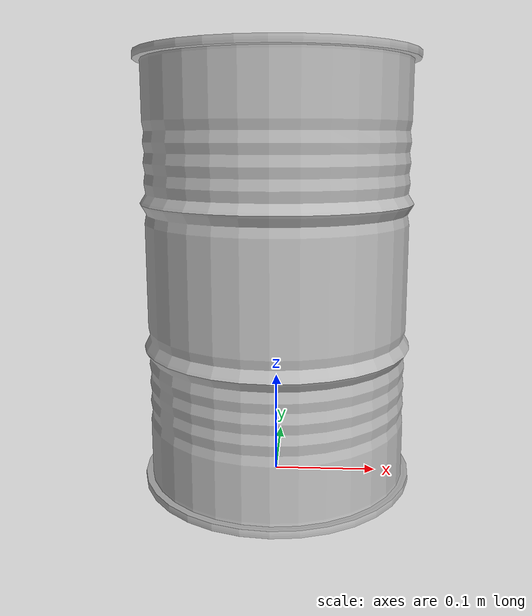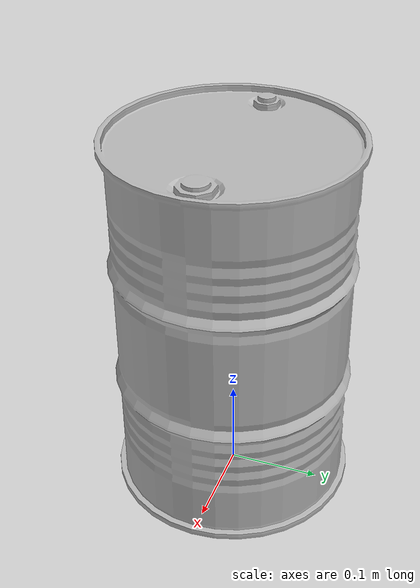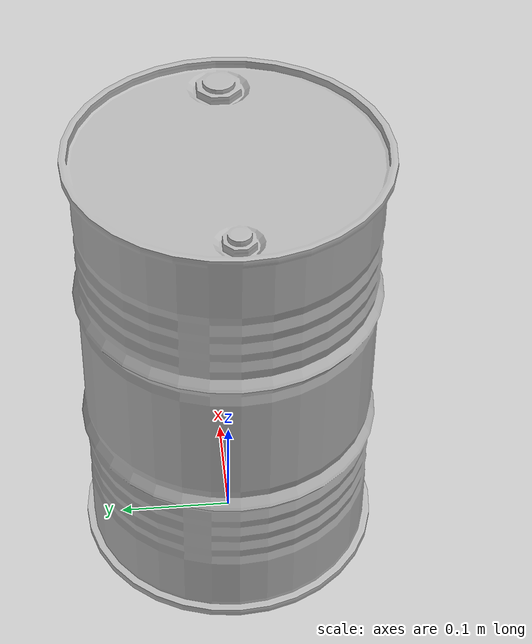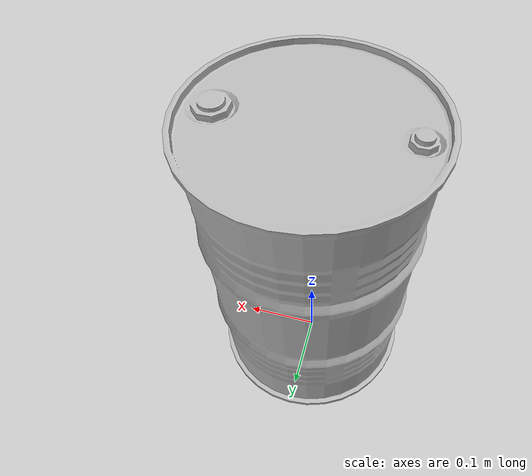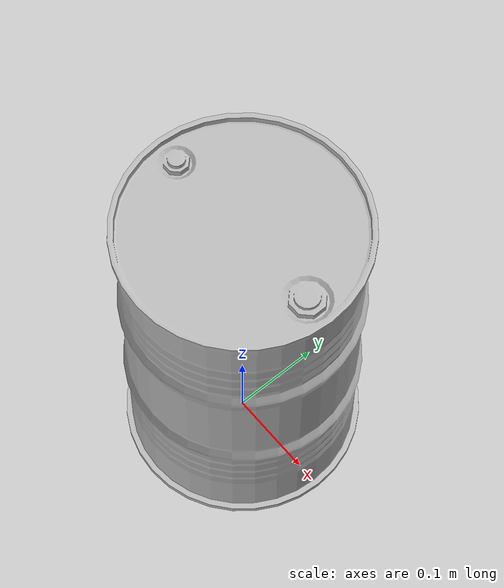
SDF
<?xml version='1.0'?>
<sdf version='1.6'>
  <model name='bluebarrel'>
    <link name='link_1'>
         <visual name='visual'>
        <pose frame=''>0 0 0 0 -0 0</pose>
        <geometry>
          <mesh>
            <uri>model://bluebarrel/meshes/bluebarrel.dae</uri>
            <scale>0.4 0.4 0.4</scale>
          </mesh>
        </geometry>
        <cast_shadows>0</cast_shadows>
        <transparency>0</transparency>
      </visual>
      <collision name='collision'>
        <laser_retro>0</laser_retro>
        <max_contacts>10</max_contacts>
        <pose frame=''>0 0 0 0 -0 0</pose>
        <geometry>
          <mesh>
            <uri>model://bluebarrel/meshes/bluebarrel.stl</uri>
            <scale>0.4 0.4 0.4</scale>
          </mesh>
        </geometry>
     </collision>
    </link>

    <static>1</static>
    <allow_auto_disable>1</allow_auto_disable>
  </model>
</sdf>
